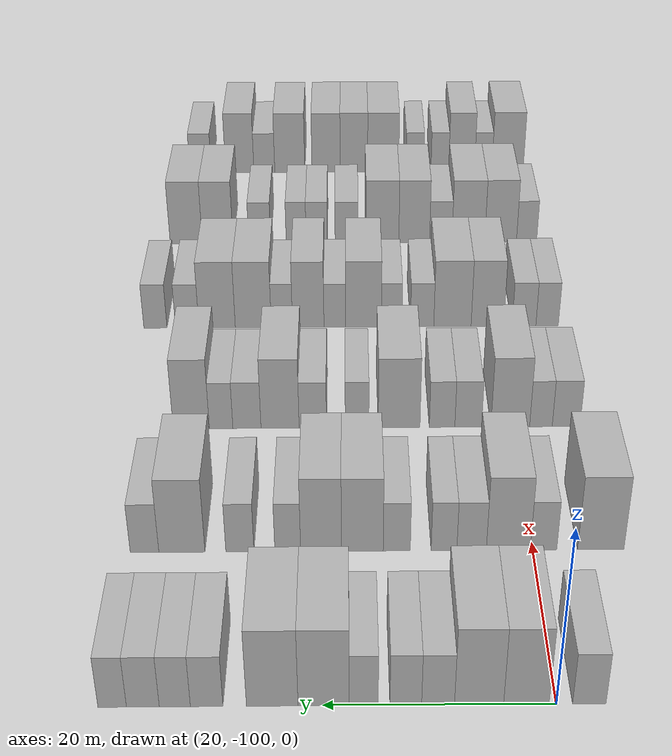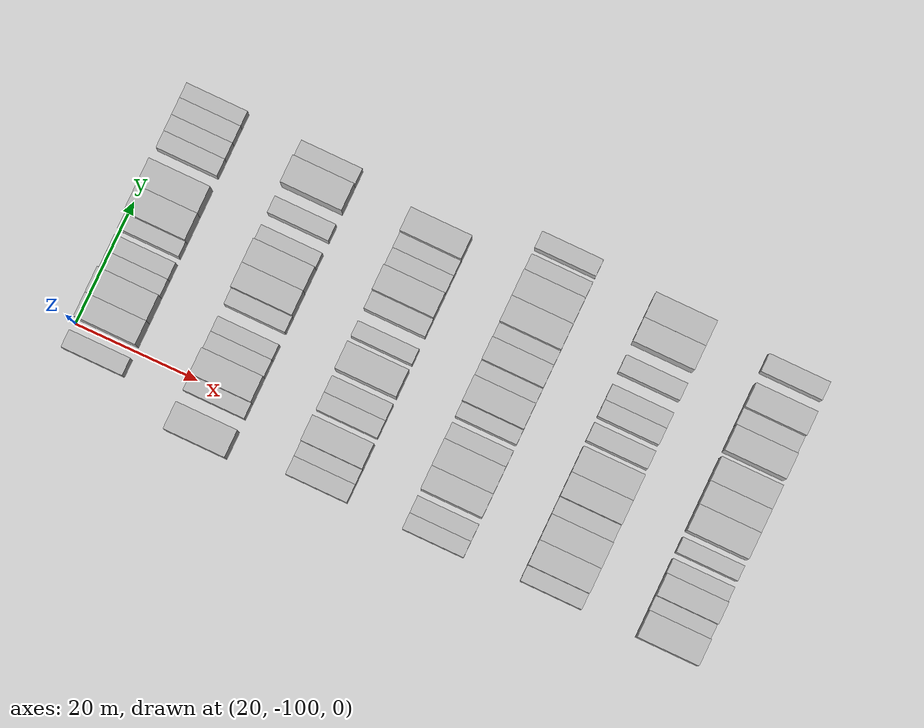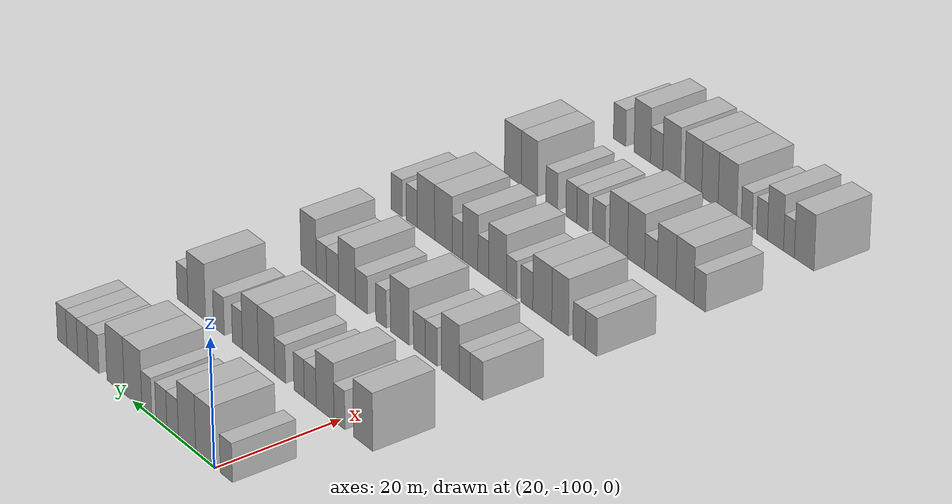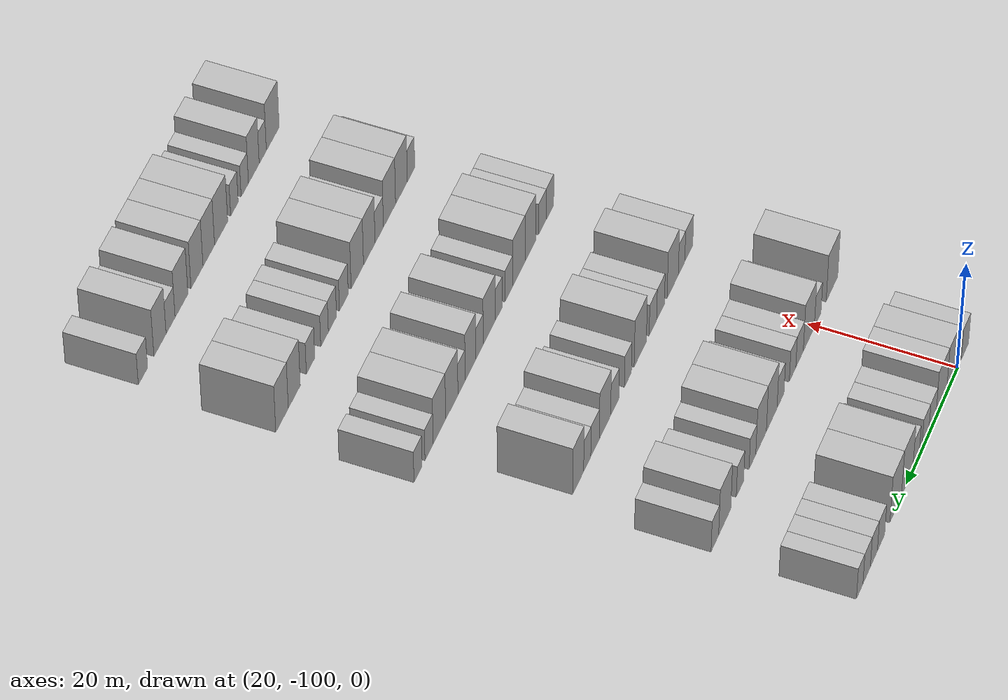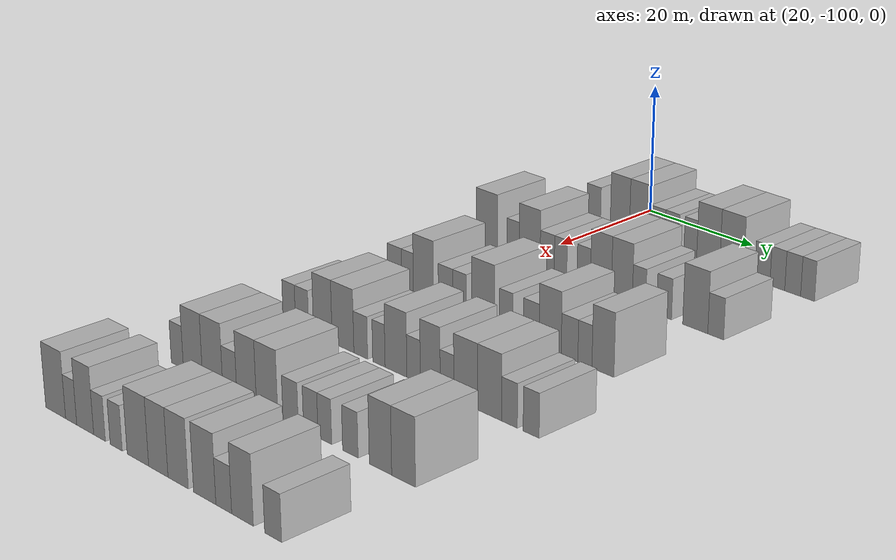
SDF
<sdf version="1.6">
 <world name="default">
  <model name="building_65">
   <static>1</static>
   <pose>25.0000 -102.7849 0 0.000000 0.000000 0.000000</pose>
   <link name="link">
    <pose>0 0 3.00 0 0 0</pose>
    <collision name="collision"><geometry><box><size>10.0000 2.8610 6.0000</size></box></geometry></collision>
    <visual name="visual">
     <cast_shadows>0</cast_shadows>
     <geometry><box><size>10.0000 2.8610 6.0000</size></box></geometry>
     <material>
      <script>
       <uri>model://HANNAS_wall/materials/scripts</uri>
       <uri>model://HANNAS_wall/materials/textures</uri>
       <name>vrc/HANNAS_wall</name>
      </script>
     </material>
    </visual>
   </link>
  </model>
  <model name="building_66">
   <static>1</static>
   <pose>25.0000 -97.4090 0 0.000000 0.000000 0.000000</pose>
   <link name="link">
    <pose>0 0 4.50 0 0 0</pose>
    <collision name="collision"><geometry><box><size>10.0000 3.8909 9.0000</size></box></geometry></collision>
    <visual name="visual">
     <cast_shadows>0</cast_shadows>
     <geometry><box><size>10.0000 3.8909 9.0000</size></box></geometry>
     <material>
      <script>
       <uri>model://HANNAS_wall/materials/scripts</uri>
       <uri>model://HANNAS_wall/materials/textures</uri>
       <name>vrc/HANNAS_wall</name>
      </script>
     </material>
    </visual>
   </link>
  </model>
  <model name="building_67">
   <static>1</static>
   <pose>25.0000 -93.3676 0 0.000000 0.000000 0.000000</pose>
   <link name="link">
    <pose>0 0 4.50 0 0 0</pose>
    <collision name="collision"><geometry><box><size>10.0000 4.1919 9.0000</size></box></geometry></collision>
    <visual name="visual">
     <cast_shadows>0</cast_shadows>
     <geometry><box><size>10.0000 4.1919 9.0000</size></box></geometry>
     <material>
      <script>
       <uri>model://HANNAS_wall/materials/scripts</uri>
       <uri>model://HANNAS_wall/materials/textures</uri>
       <name>vrc/HANNAS_wall</name>
      </script>
     </material>
    </visual>
   </link>
  </model>
  <model name="building_68">
   <static>1</static>
   <pose>25.0000 -89.8693 0 0.000000 0.000000 0.000000</pose>
   <link name="link">
    <pose>0 0 3.00 0 0 0</pose>
    <collision name="collision"><geometry><box><size>10.0000 2.8045 6.0000</size></box></geometry></collision>
    <visual name="visual">
     <cast_shadows>0</cast_shadows>
     <geometry><box><size>10.0000 2.8045 6.0000</size></box></geometry>
     <material>
      <script>
       <uri>model://HANNAS_wall/materials/scripts</uri>
       <uri>model://HANNAS_wall/materials/textures</uri>
       <name>vrc/HANNAS_wall</name>
      </script>
     </material>
    </visual>
   </link>
  </model>
  <model name="building_69">
   <static>1</static>
   <pose>25.0000 -87.1155 0 0.000000 0.000000 0.000000</pose>
   <link name="link">
    <pose>0 0 3.00 0 0 0</pose>
    <collision name="collision"><geometry><box><size>10.0000 2.7032 6.0000</size></box></geometry></collision>
    <visual name="visual">
     <cast_shadows>0</cast_shadows>
     <geometry><box><size>10.0000 2.7032 6.0000</size></box></geometry>
     <material>
      <script>
       <uri>model://HANNAS_wall/materials/scripts</uri>
       <uri>model://HANNAS_wall/materials/textures</uri>
       <name>vrc/HANNAS_wall</name>
      </script>
     </material>
    </visual>
   </link>
  </model>
  <model name="building_70">
   <static>1</static>
   <pose>25.0000 -83.5332 0 0.000000 0.000000 0.000000</pose>
   <link name="link">
    <pose>0 0 3.00 0 0 0</pose>
    <collision name="collision"><geometry><box><size>10.0000 2.4614 6.0000</size></box></geometry></collision>
    <visual name="visual">
     <cast_shadows>0</cast_shadows>
     <geometry><box><size>10.0000 2.4614 6.0000</size></box></geometry>
     <material>
      <script>
       <uri>model://HANNAS_wall/materials/scripts</uri>
       <uri>model://HANNAS_wall/materials/textures</uri>
       <name>vrc/HANNAS_wall</name>
      </script>
     </material>
    </visual>
   </link>
  </model>
  <model name="building_71">
   <static>1</static>
   <pose>25.0000 -80.1200 0 0.000000 0.000000 0.000000</pose>
   <link name="link">
    <pose>0 0 4.50 0 0 0</pose>
    <collision name="collision"><geometry><box><size>10.0000 4.3650 9.0000</size></box></geometry></collision>
    <visual name="visual">
     <cast_shadows>0</cast_shadows>
     <geometry><box><size>10.0000 4.3650 9.0000</size></box></geometry>
     <material>
      <script>
       <uri>model://HANNAS_wall/materials/scripts</uri>
       <uri>model://HANNAS_wall/materials/textures</uri>
       <name>vrc/HANNAS_wall</name>
      </script>
     </material>
    </visual>
   </link>
  </model>
  <model name="building_72">
   <static>1</static>
   <pose>25.0000 -75.7401 0 0.000000 0.000000 0.000000</pose>
   <link name="link">
    <pose>0 0 4.50 0 0 0</pose>
    <collision name="collision"><geometry><box><size>10.0000 4.3948 9.0000</size></box></geometry></collision>
    <visual name="visual">
     <cast_shadows>0</cast_shadows>
     <geometry><box><size>10.0000 4.3948 9.0000</size></box></geometry>
     <material>
      <script>
       <uri>model://HANNAS_wall/materials/scripts</uri>
       <uri>model://HANNAS_wall/materials/textures</uri>
       <name>vrc/HANNAS_wall</name>
      </script>
     </material>
    </visual>
   </link>
  </model>
  <model name="building_73">
   <static>1</static>
   <pose>25.0000 -70.1565 0 0.000000 0.000000 0.000000</pose>
   <link name="link">
    <pose>0 0 3.00 0 0 0</pose>
    <collision name="collision"><geometry><box><size>10.0000 2.7724 6.0000</size></box></geometry></collision>
    <visual name="visual">
     <cast_shadows>0</cast_shadows>
     <geometry><box><size>10.0000 2.7724 6.0000</size></box></geometry>
     <material>
      <script>
       <uri>model://HANNAS_wall/materials/scripts</uri>
       <uri>model://HANNAS_wall/materials/textures</uri>
       <name>vrc/HANNAS_wall</name>
      </script>
     </material>
    </visual>
   </link>
  </model>
  <model name="building_74">
   <static>1</static>
   <pose>25.0000 -67.4479 0 0.000000 0.000000 0.000000</pose>
   <link name="link">
    <pose>0 0 3.00 0 0 0</pose>
    <collision name="collision"><geometry><box><size>10.0000 2.6448 6.0000</size></box></geometry></collision>
    <visual name="visual">
     <cast_shadows>0</cast_shadows>
     <geometry><box><size>10.0000 2.6448 6.0000</size></box></geometry>
     <material>
      <script>
       <uri>model://HANNAS_wall/materials/scripts</uri>
       <uri>model://HANNAS_wall/materials/textures</uri>
       <name>vrc/HANNAS_wall</name>
      </script>
     </material>
    </visual>
   </link>
  </model>
  <model name="building_75">
   <static>1</static>
   <pose>25.0000 -64.7291 0 0.000000 0.000000 0.000000</pose>
   <link name="link">
    <pose>0 0 3.00 0 0 0</pose>
    <collision name="collision"><geometry><box><size>10.0000 2.7929 6.0000</size></box></geometry></collision>
    <visual name="visual">
     <cast_shadows>0</cast_shadows>
     <geometry><box><size>10.0000 2.7929 6.0000</size></box></geometry>
     <material>
      <script>
       <uri>model://HANNAS_wall/materials/scripts</uri>
       <uri>model://HANNAS_wall/materials/textures</uri>
       <name>vrc/HANNAS_wall</name>
      </script>
     </material>
    </visual>
   </link>
  </model>
  <model name="building_76">
   <static>1</static>
   <pose>25.0000 -62.1203 0 0.000000 0.000000 0.000000</pose>
   <link name="link">
    <pose>0 0 3.00 0 0 0</pose>
    <collision name="collision"><geometry><box><size>10.0000 2.4247 6.0000</size></box></geometry></collision>
    <visual name="visual">
     <cast_shadows>0</cast_shadows>
     <geometry><box><size>10.0000 2.4247 6.0000</size></box></geometry>
     <material>
      <script>
       <uri>model://HANNAS_wall/materials/scripts</uri>
       <uri>model://HANNAS_wall/materials/textures</uri>
       <name>vrc/HANNAS_wall</name>
      </script>
     </material>
    </visual>
   </link>
  </model>
  <model name="building_229">
   <static>1</static>
   <pose>44.0000 -106.5244 0 0.000000 0.000000 0.000000</pose>
   <link name="link">
    <pose>0 0 4.50 0 0 0</pose>
    <collision name="collision"><geometry><box><size>10.0000 4.4620 9.0000</size></box></geometry></collision>
    <visual name="visual">
     <cast_shadows>0</cast_shadows>
     <geometry><box><size>10.0000 4.4620 9.0000</size></box></geometry>
     <material>
      <script>
       <uri>model://HANNAS_wall/materials/scripts</uri>
       <uri>model://HANNAS_wall/materials/textures</uri>
       <name>vrc/HANNAS_wall</name>
      </script>
     </material>
    </visual>
   </link>
  </model>
  <model name="building_230">
   <static>1</static>
   <pose>44.0000 -101.0189 0 0.000000 0.000000 0.000000</pose>
   <link name="link">
    <pose>0 0 3.00 0 0 0</pose>
    <collision name="collision"><geometry><box><size>10.0000 2.5490 6.0000</size></box></geometry></collision>
    <visual name="visual">
     <cast_shadows>0</cast_shadows>
     <geometry><box><size>10.0000 2.5490 6.0000</size></box></geometry>
     <material>
      <script>
       <uri>model://HANNAS_wall/materials/scripts</uri>
       <uri>model://HANNAS_wall/materials/textures</uri>
       <name>vrc/HANNAS_wall</name>
      </script>
     </material>
    </visual>
   </link>
  </model>
  <model name="building_231">
   <static>1</static>
   <pose>44.0000 -97.6346 0 0.000000 0.000000 0.000000</pose>
   <link name="link">
    <pose>0 0 4.50 0 0 0</pose>
    <collision name="collision"><geometry><box><size>10.0000 4.2196 9.0000</size></box></geometry></collision>
    <visual name="visual">
     <cast_shadows>0</cast_shadows>
     <geometry><box><size>10.0000 4.2196 9.0000</size></box></geometry>
     <material>
      <script>
       <uri>model://HANNAS_wall/materials/scripts</uri>
       <uri>model://HANNAS_wall/materials/textures</uri>
       <name>vrc/HANNAS_wall</name>
      </script>
     </material>
    </visual>
   </link>
  </model>
  <model name="building_232">
   <static>1</static>
   <pose>44.0000 -94.1074 0 0.000000 0.000000 0.000000</pose>
   <link name="link">
    <pose>0 0 3.00 0 0 0</pose>
    <collision name="collision"><geometry><box><size>10.0000 2.8350 6.0000</size></box></geometry></collision>
    <visual name="visual">
     <cast_shadows>0</cast_shadows>
     <geometry><box><size>10.0000 2.8350 6.0000</size></box></geometry>
     <material>
      <script>
       <uri>model://HANNAS_wall/materials/scripts</uri>
       <uri>model://HANNAS_wall/materials/textures</uri>
       <name>vrc/HANNAS_wall</name>
      </script>
     </material>
    </visual>
   </link>
  </model>
  <model name="building_233">
   <static>1</static>
   <pose>44.0000 -91.4559 0 0.000000 0.000000 0.000000</pose>
   <link name="link">
    <pose>0 0 3.00 0 0 0</pose>
    <collision name="collision"><geometry><box><size>10.0000 2.4679 6.0000</size></box></geometry></collision>
    <visual name="visual">
     <cast_shadows>0</cast_shadows>
     <geometry><box><size>10.0000 2.4679 6.0000</size></box></geometry>
     <material>
      <script>
       <uri>model://HANNAS_wall/materials/scripts</uri>
       <uri>model://HANNAS_wall/materials/textures</uri>
       <name>vrc/HANNAS_wall</name>
      </script>
     </material>
    </visual>
   </link>
  </model>
  <model name="building_234">
   <static>1</static>
   <pose>44.0000 -86.9217 0 0.000000 0.000000 0.000000</pose>
   <link name="link">
    <pose>0 0 3.00 0 0 0</pose>
    <collision name="collision"><geometry><box><size>10.0000 2.6005 6.0000</size></box></geometry></collision>
    <visual name="visual">
     <cast_shadows>0</cast_shadows>
     <geometry><box><size>10.0000 2.6005 6.0000</size></box></geometry>
     <material>
      <script>
       <uri>model://HANNAS_wall/materials/scripts</uri>
       <uri>model://HANNAS_wall/materials/textures</uri>
       <name>vrc/HANNAS_wall</name>
      </script>
     </material>
    </visual>
   </link>
  </model>
  <model name="building_235">
   <static>1</static>
   <pose>44.0000 -83.6260 0 0.000000 0.000000 0.000000</pose>
   <link name="link">
    <pose>0 0 4.50 0 0 0</pose>
    <collision name="collision"><geometry><box><size>10.0000 3.9909 9.0000</size></box></geometry></collision>
    <visual name="visual">
     <cast_shadows>0</cast_shadows>
     <geometry><box><size>10.0000 3.9909 9.0000</size></box></geometry>
     <material>
      <script>
       <uri>model://HANNAS_wall/materials/scripts</uri>
       <uri>model://HANNAS_wall/materials/textures</uri>
       <name>vrc/HANNAS_wall</name>
      </script>
     </material>
    </visual>
   </link>
  </model>
  <model name="building_236">
   <static>1</static>
   <pose>44.0000 -79.6672 0 0.000000 0.000000 0.000000</pose>
   <link name="link">
    <pose>0 0 4.50 0 0 0</pose>
    <collision name="collision"><geometry><box><size>10.0000 3.9267 9.0000</size></box></geometry></collision>
    <visual name="visual">
     <cast_shadows>0</cast_shadows>
     <geometry><box><size>10.0000 3.9267 9.0000</size></box></geometry>
     <material>
      <script>
       <uri>model://HANNAS_wall/materials/scripts</uri>
       <uri>model://HANNAS_wall/materials/textures</uri>
       <name>vrc/HANNAS_wall</name>
      </script>
     </material>
    </visual>
   </link>
  </model>
  <model name="building_237">
   <static>1</static>
   <pose>44.0000 -76.4677 0 0.000000 0.000000 0.000000</pose>
   <link name="link">
    <pose>0 0 3.00 0 0 0</pose>
    <collision name="collision"><geometry><box><size>10.0000 2.4722 6.0000</size></box></geometry></collision>
    <visual name="visual">
     <cast_shadows>0</cast_shadows>
     <geometry><box><size>10.0000 2.4722 6.0000</size></box></geometry>
     <material>
      <script>
       <uri>model://HANNAS_wall/materials/scripts</uri>
       <uri>model://HANNAS_wall/materials/textures</uri>
       <name>vrc/HANNAS_wall</name>
      </script>
     </material>
    </visual>
   </link>
  </model>
  <model name="building_238">
   <static>1</static>
   <pose>44.0000 -71.8830 0 0.000000 0.000000 0.000000</pose>
   <link name="link">
    <pose>0 0 3.00 0 0 0</pose>
    <collision name="collision"><geometry><box><size>10.0000 2.6972 6.0000</size></box></geometry></collision>
    <visual name="visual">
     <cast_shadows>0</cast_shadows>
     <geometry><box><size>10.0000 2.6972 6.0000</size></box></geometry>
     <material>
      <script>
       <uri>model://HANNAS_wall/materials/scripts</uri>
       <uri>model://HANNAS_wall/materials/textures</uri>
       <name>vrc/HANNAS_wall</name>
      </script>
     </material>
    </visual>
   </link>
  </model>
  <model name="building_239">
   <static>1</static>
   <pose>44.0000 -66.3242 0 0.000000 0.000000 0.000000</pose>
   <link name="link">
    <pose>0 0 4.50 0 0 0</pose>
    <collision name="collision"><geometry><box><size>10.0000 4.4204 9.0000</size></box></geometry></collision>
    <visual name="visual">
     <cast_shadows>0</cast_shadows>
     <geometry><box><size>10.0000 4.4204 9.0000</size></box></geometry>
     <material>
      <script>
       <uri>model://HANNAS_wall/materials/scripts</uri>
       <uri>model://HANNAS_wall/materials/textures</uri>
       <name>vrc/HANNAS_wall</name>
      </script>
     </material>
    </visual>
   </link>
  </model>
  <model name="building_240">
   <static>1</static>
   <pose>44.0000 -62.7446 0 0.000000 0.000000 0.000000</pose>
   <link name="link">
    <pose>0 0 3.00 0 0 0</pose>
    <collision name="collision"><geometry><box><size>10.0000 2.7388 6.0000</size></box></geometry></collision>
    <visual name="visual">
     <cast_shadows>0</cast_shadows>
     <geometry><box><size>10.0000 2.7388 6.0000</size></box></geometry>
     <material>
      <script>
       <uri>model://HANNAS_wall/materials/scripts</uri>
       <uri>model://HANNAS_wall/materials/textures</uri>
       <name>vrc/HANNAS_wall</name>
      </script>
     </material>
    </visual>
   </link>
  </model>
  <model name="building_405">
   <static>1</static>
   <pose>63.0000 -105.5866 0 0.000000 0.000000 0.000000</pose>
   <link name="link">
    <pose>0 0 3.00 0 0 0</pose>
    <collision name="collision"><geometry><box><size>10.0000 2.9656 6.0000</size></box></geometry></collision>
    <visual name="visual">
     <cast_shadows>0</cast_shadows>
     <geometry><box><size>10.0000 2.9656 6.0000</size></box></geometry>
     <material>
      <script>
       <uri>model://HANNAS_wall/materials/scripts</uri>
       <uri>model://HANNAS_wall/materials/textures</uri>
       <name>vrc/HANNAS_wall</name>
      </script>
     </material>
    </visual>
   </link>
  </model>
  <model name="building_406">
   <static>1</static>
   <pose>63.0000 -102.8964 0 0.000000 0.000000 0.000000</pose>
   <link name="link">
    <pose>0 0 3.00 0 0 0</pose>
    <collision name="collision"><geometry><box><size>10.0000 2.4147 6.0000</size></box></geometry></collision>
    <visual name="visual">
     <cast_shadows>0</cast_shadows>
     <geometry><box><size>10.0000 2.4147 6.0000</size></box></geometry>
     <material>
      <script>
       <uri>model://HANNAS_wall/materials/scripts</uri>
       <uri>model://HANNAS_wall/materials/textures</uri>
       <name>vrc/HANNAS_wall</name>
      </script>
     </material>
    </visual>
   </link>
  </model>
  <model name="building_407">
   <static>1</static>
   <pose>63.0000 -99.6198 0 0.000000 0.000000 0.000000</pose>
   <link name="link">
    <pose>0 0 4.50 0 0 0</pose>
    <collision name="collision"><geometry><box><size>10.0000 4.1385 9.0000</size></box></geometry></collision>
    <visual name="visual">
     <cast_shadows>0</cast_shadows>
     <geometry><box><size>10.0000 4.1385 9.0000</size></box></geometry>
     <material>
      <script>
       <uri>model://HANNAS_wall/materials/scripts</uri>
       <uri>model://HANNAS_wall/materials/textures</uri>
       <name>vrc/HANNAS_wall</name>
      </script>
     </material>
    </visual>
   </link>
  </model>
  <model name="building_408">
   <static>1</static>
   <pose>63.0000 -95.1232 0 0.000000 0.000000 0.000000</pose>
   <link name="link">
    <pose>0 0 3.00 0 0 0</pose>
    <collision name="collision"><geometry><box><size>10.0000 2.8548 6.0000</size></box></geometry></collision>
    <visual name="visual">
     <cast_shadows>0</cast_shadows>
     <geometry><box><size>10.0000 2.8548 6.0000</size></box></geometry>
     <material>
      <script>
       <uri>model://HANNAS_wall/materials/scripts</uri>
       <uri>model://HANNAS_wall/materials/textures</uri>
       <name>vrc/HANNAS_wall</name>
      </script>
     </material>
    </visual>
   </link>
  </model>
  <model name="building_409">
   <static>1</static>
   <pose>63.0000 -92.3336 0 0.000000 0.000000 0.000000</pose>
   <link name="link">
    <pose>0 0 3.00 0 0 0</pose>
    <collision name="collision"><geometry><box><size>10.0000 2.7244 6.0000</size></box></geometry></collision>
    <visual name="visual">
     <cast_shadows>0</cast_shadows>
     <geometry><box><size>10.0000 2.7244 6.0000</size></box></geometry>
     <material>
      <script>
       <uri>model://HANNAS_wall/materials/scripts</uri>
       <uri>model://HANNAS_wall/materials/textures</uri>
       <name>vrc/HANNAS_wall</name>
      </script>
     </material>
    </visual>
   </link>
  </model>
  <model name="building_410">
   <static>1</static>
   <pose>63.0000 -87.7467 0 0.000000 0.000000 0.000000</pose>
   <link name="link">
    <pose>0 0 4.50 0 0 0</pose>
    <collision name="collision"><geometry><box><size>10.0000 4.4492 9.0000</size></box></geometry></collision>
    <visual name="visual">
     <cast_shadows>0</cast_shadows>
     <geometry><box><size>10.0000 4.4492 9.0000</size></box></geometry>
     <material>
      <script>
       <uri>model://HANNAS_wall/materials/scripts</uri>
       <uri>model://HANNAS_wall/materials/textures</uri>
       <name>vrc/HANNAS_wall</name>
      </script>
     </material>
    </visual>
   </link>
  </model>
  <model name="building_411">
   <static>1</static>
   <pose>63.0000 -83.2671 0 0.000000 0.000000 0.000000</pose>
   <link name="link">
    <pose>0 0 3.00 0 0 0</pose>
    <collision name="collision"><geometry><box><size>10.0000 2.5100 6.0000</size></box></geometry></collision>
    <visual name="visual">
     <cast_shadows>0</cast_shadows>
     <geometry><box><size>10.0000 2.5100 6.0000</size></box></geometry>
     <material>
      <script>
       <uri>model://HANNAS_wall/materials/scripts</uri>
       <uri>model://HANNAS_wall/materials/textures</uri>
       <name>vrc/HANNAS_wall</name>
      </script>
     </material>
    </visual>
   </link>
  </model>
  <model name="building_412">
   <static>1</static>
   <pose>63.0000 -78.5492 0 0.000000 0.000000 0.000000</pose>
   <link name="link">
    <pose>0 0 3.00 0 0 0</pose>
    <collision name="collision"><geometry><box><size>10.0000 2.9260 6.0000</size></box></geometry></collision>
    <visual name="visual">
     <cast_shadows>0</cast_shadows>
     <geometry><box><size>10.0000 2.9260 6.0000</size></box></geometry>
     <material>
      <script>
       <uri>model://HANNAS_wall/materials/scripts</uri>
       <uri>model://HANNAS_wall/materials/textures</uri>
       <name>vrc/HANNAS_wall</name>
      </script>
     </material>
    </visual>
   </link>
  </model>
  <model name="building_413">
   <static>1</static>
   <pose>63.0000 -75.0539 0 0.000000 0.000000 0.000000</pose>
   <link name="link">
    <pose>0 0 4.50 0 0 0</pose>
    <collision name="collision"><geometry><box><size>10.0000 4.0645 9.0000</size></box></geometry></collision>
    <visual name="visual">
     <cast_shadows>0</cast_shadows>
     <geometry><box><size>10.0000 4.0645 9.0000</size></box></geometry>
     <material>
      <script>
       <uri>model://HANNAS_wall/materials/scripts</uri>
       <uri>model://HANNAS_wall/materials/textures</uri>
       <name>vrc/HANNAS_wall</name>
      </script>
     </material>
    </visual>
   </link>
  </model>
  <model name="building_414">
   <static>1</static>
   <pose>63.0000 -71.5226 0 0.000000 0.000000 0.000000</pose>
   <link name="link">
    <pose>0 0 3.00 0 0 0</pose>
    <collision name="collision"><geometry><box><size>10.0000 2.9981 6.0000</size></box></geometry></collision>
    <visual name="visual">
     <cast_shadows>0</cast_shadows>
     <geometry><box><size>10.0000 2.9981 6.0000</size></box></geometry>
     <material>
      <script>
       <uri>model://HANNAS_wall/materials/scripts</uri>
       <uri>model://HANNAS_wall/materials/textures</uri>
       <name>vrc/HANNAS_wall</name>
      </script>
     </material>
    </visual>
   </link>
  </model>
  <model name="building_415">
   <static>1</static>
   <pose>63.0000 -68.7735 0 0.000000 0.000000 0.000000</pose>
   <link name="link">
    <pose>0 0 3.00 0 0 0</pose>
    <collision name="collision"><geometry><box><size>10.0000 2.5002 6.0000</size></box></geometry></collision>
    <visual name="visual">
     <cast_shadows>0</cast_shadows>
     <geometry><box><size>10.0000 2.5002 6.0000</size></box></geometry>
     <material>
      <script>
       <uri>model://HANNAS_wall/materials/scripts</uri>
       <uri>model://HANNAS_wall/materials/textures</uri>
       <name>vrc/HANNAS_wall</name>
      </script>
     </material>
    </visual>
   </link>
  </model>
  <model name="building_416">
   <static>1</static>
   <pose>63.0000 -65.5989 0 0.000000 0.000000 0.000000</pose>
   <link name="link">
    <pose>0 0 4.50 0 0 0</pose>
    <collision name="collision"><geometry><box><size>10.0000 3.8489 9.0000</size></box></geometry></collision>
    <visual name="visual">
     <cast_shadows>0</cast_shadows>
     <geometry><box><size>10.0000 3.8489 9.0000</size></box></geometry>
     <material>
      <script>
       <uri>model://HANNAS_wall/materials/scripts</uri>
       <uri>model://HANNAS_wall/materials/textures</uri>
       <name>vrc/HANNAS_wall</name>
      </script>
     </material>
    </visual>
   </link>
  </model>
  <model name="building_580">
   <static>1</static>
   <pose>82.0000 -105.7443 0 0.000000 0.000000 0.000000</pose>
   <link name="link">
    <pose>0 0 3.00 0 0 0</pose>
    <collision name="collision"><geometry><box><size>10.0000 2.6399 6.0000</size></box></geometry></collision>
    <visual name="visual">
     <cast_shadows>0</cast_shadows>
     <geometry><box><size>10.0000 2.6399 6.0000</size></box></geometry>
     <material>
      <script>
       <uri>model://HANNAS_wall/materials/scripts</uri>
       <uri>model://HANNAS_wall/materials/textures</uri>
       <name>vrc/HANNAS_wall</name>
      </script>
     </material>
    </visual>
   </link>
  </model>
  <model name="building_581">
   <static>1</static>
   <pose>82.0000 -103.0315 0 0.000000 0.000000 0.000000</pose>
   <link name="link">
    <pose>0 0 3.00 0 0 0</pose>
    <collision name="collision"><geometry><box><size>10.0000 2.7857 6.0000</size></box></geometry></collision>
    <visual name="visual">
     <cast_shadows>0</cast_shadows>
     <geometry><box><size>10.0000 2.7857 6.0000</size></box></geometry>
     <material>
      <script>
       <uri>model://HANNAS_wall/materials/scripts</uri>
       <uri>model://HANNAS_wall/materials/textures</uri>
       <name>vrc/HANNAS_wall</name>
      </script>
     </material>
    </visual>
   </link>
  </model>
  <model name="building_582">
   <static>1</static>
   <pose>82.0000 -98.7223 0 0.000000 0.000000 0.000000</pose>
   <link name="link">
    <pose>0 0 4.50 0 0 0</pose>
    <collision name="collision"><geometry><box><size>10.0000 3.8327 9.0000</size></box></geometry></collision>
    <visual name="visual">
     <cast_shadows>0</cast_shadows>
     <geometry><box><size>10.0000 3.8327 9.0000</size></box></geometry>
     <material>
      <script>
       <uri>model://HANNAS_wall/materials/scripts</uri>
       <uri>model://HANNAS_wall/materials/textures</uri>
       <name>vrc/HANNAS_wall</name>
      </script>
     </material>
    </visual>
   </link>
  </model>
  <model name="building_583">
   <static>1</static>
   <pose>82.0000 -94.6121 0 0.000000 0.000000 0.000000</pose>
   <link name="link">
    <pose>0 0 4.50 0 0 0</pose>
    <collision name="collision"><geometry><box><size>10.0000 4.3877 9.0000</size></box></geometry></collision>
    <visual name="visual">
     <cast_shadows>0</cast_shadows>
     <geometry><box><size>10.0000 4.3877 9.0000</size></box></geometry>
     <material>
      <script>
       <uri>model://HANNAS_wall/materials/scripts</uri>
       <uri>model://HANNAS_wall/materials/textures</uri>
       <name>vrc/HANNAS_wall</name>
      </script>
     </material>
    </visual>
   </link>
  </model>
  <model name="building_584">
   <static>1</static>
   <pose>82.0000 -91.0523 0 0.000000 0.000000 0.000000</pose>
   <link name="link">
    <pose>0 0 3.00 0 0 0</pose>
    <collision name="collision"><geometry><box><size>10.0000 2.7319 6.0000</size></box></geometry></collision>
    <visual name="visual">
     <cast_shadows>0</cast_shadows>
     <geometry><box><size>10.0000 2.7319 6.0000</size></box></geometry>
     <material>
      <script>
       <uri>model://HANNAS_wall/materials/scripts</uri>
       <uri>model://HANNAS_wall/materials/textures</uri>
       <name>vrc/HANNAS_wall</name>
      </script>
     </material>
    </visual>
   </link>
  </model>
  <model name="building_585">
   <static>1</static>
   <pose>82.0000 -87.4783 0 0.000000 0.000000 0.000000</pose>
   <link name="link">
    <pose>0 0 3.00 0 0 0</pose>
    <collision name="collision"><geometry><box><size>10.0000 2.4161 6.0000</size></box></geometry></collision>
    <visual name="visual">
     <cast_shadows>0</cast_shadows>
     <geometry><box><size>10.0000 2.4161 6.0000</size></box></geometry>
     <material>
      <script>
       <uri>model://HANNAS_wall/materials/scripts</uri>
       <uri>model://HANNAS_wall/materials/textures</uri>
       <name>vrc/HANNAS_wall</name>
      </script>
     </material>
    </visual>
   </link>
  </model>
  <model name="building_586">
   <static>1</static>
   <pose>82.0000 -84.1757 0 0.000000 0.000000 0.000000</pose>
   <link name="link">
    <pose>0 0 4.50 0 0 0</pose>
    <collision name="collision"><geometry><box><size>10.0000 4.1892 9.0000</size></box></geometry></collision>
    <visual name="visual">
     <cast_shadows>0</cast_shadows>
     <geometry><box><size>10.0000 4.1892 9.0000</size></box></geometry>
     <material>
      <script>
       <uri>model://HANNAS_wall/materials/scripts</uri>
       <uri>model://HANNAS_wall/materials/textures</uri>
       <name>vrc/HANNAS_wall</name>
      </script>
     </material>
    </visual>
   </link>
  </model>
  <model name="building_587">
   <static>1</static>
   <pose>82.0000 -80.8067 0 0.000000 0.000000 0.000000</pose>
   <link name="link">
    <pose>0 0 3.00 0 0 0</pose>
    <collision name="collision"><geometry><box><size>10.0000 2.5488 6.0000</size></box></geometry></collision>
    <visual name="visual">
     <cast_shadows>0</cast_shadows>
     <geometry><box><size>10.0000 2.5488 6.0000</size></box></geometry>
     <material>
      <script>
       <uri>model://HANNAS_wall/materials/scripts</uri>
       <uri>model://HANNAS_wall/materials/textures</uri>
       <name>vrc/HANNAS_wall</name>
      </script>
     </material>
    </visual>
   </link>
  </model>
  <model name="building_588">
   <static>1</static>
   <pose>82.0000 -77.6833 0 0.000000 0.000000 0.000000</pose>
   <link name="link">
    <pose>0 0 4.50 0 0 0</pose>
    <collision name="collision"><geometry><box><size>10.0000 3.6979 9.0000</size></box></geometry></collision>
    <visual name="visual">
     <cast_shadows>0</cast_shadows>
     <geometry><box><size>10.0000 3.6979 9.0000</size></box></geometry>
     <material>
      <script>
       <uri>model://HANNAS_wall/materials/scripts</uri>
       <uri>model://HANNAS_wall/materials/textures</uri>
       <name>vrc/HANNAS_wall</name>
      </script>
     </material>
    </visual>
   </link>
  </model>
  <model name="building_589">
   <static>1</static>
   <pose>82.0000 -74.5910 0 0.000000 0.000000 0.000000</pose>
   <link name="link">
    <pose>0 0 3.00 0 0 0</pose>
    <collision name="collision"><geometry><box><size>10.0000 2.4867 6.0000</size></box></geometry></collision>
    <visual name="visual">
     <cast_shadows>0</cast_shadows>
     <geometry><box><size>10.0000 2.4867 6.0000</size></box></geometry>
     <material>
      <script>
       <uri>model://HANNAS_wall/materials/scripts</uri>
       <uri>model://HANNAS_wall/materials/textures</uri>
       <name>vrc/HANNAS_wall</name>
      </script>
     </material>
    </visual>
   </link>
  </model>
  <model name="building_590">
   <static>1</static>
   <pose>82.0000 -71.2392 0 0.000000 0.000000 0.000000</pose>
   <link name="link">
    <pose>0 0 4.50 0 0 0</pose>
    <collision name="collision"><geometry><box><size>10.0000 4.2168 9.0000</size></box></geometry></collision>
    <visual name="visual">
     <cast_shadows>0</cast_shadows>
     <geometry><box><size>10.0000 4.2168 9.0000</size></box></geometry>
     <material>
      <script>
       <uri>model://HANNAS_wall/materials/scripts</uri>
       <uri>model://HANNAS_wall/materials/textures</uri>
       <name>vrc/HANNAS_wall</name>
      </script>
     </material>
    </visual>
   </link>
  </model>
  <model name="building_591">
   <static>1</static>
   <pose>82.0000 -66.9979 0 0.000000 0.000000 0.000000</pose>
   <link name="link">
    <pose>0 0 4.50 0 0 0</pose>
    <collision name="collision"><geometry><box><size>10.0000 4.2659 9.0000</size></box></geometry></collision>
    <visual name="visual">
     <cast_shadows>0</cast_shadows>
     <geometry><box><size>10.0000 4.2659 9.0000</size></box></geometry>
     <material>
      <script>
       <uri>model://HANNAS_wall/materials/scripts</uri>
       <uri>model://HANNAS_wall/materials/textures</uri>
       <name>vrc/HANNAS_wall</name>
      </script>
     </material>
    </visual>
   </link>
  </model>
  <model name="building_592">
   <static>1</static>
   <pose>82.0000 -63.4952 0 0.000000 0.000000 0.000000</pose>
   <link name="link">
    <pose>0 0 3.00 0 0 0</pose>
    <collision name="collision"><geometry><box><size>10.0000 2.7394 6.0000</size></box></geometry></collision>
    <visual name="visual">
     <cast_shadows>0</cast_shadows>
     <geometry><box><size>10.0000 2.7394 6.0000</size></box></geometry>
     <material>
      <script>
       <uri>model://HANNAS_wall/materials/scripts</uri>
       <uri>model://HANNAS_wall/materials/textures</uri>
       <name>vrc/HANNAS_wall</name>
      </script>
     </material>
    </visual>
   </link>
  </model>
  <model name="building_593">
   <static>1</static>
   <pose>82.0000 -59.7701 0 0.000000 0.000000 0.000000</pose>
   <link name="link">
    <pose>0 0 3.00 0 0 0</pose>
    <collision name="collision"><geometry><box><size>10.0000 2.7108 6.0000</size></box></geometry></collision>
    <visual name="visual">
     <cast_shadows>0</cast_shadows>
     <geometry><box><size>10.0000 2.7108 6.0000</size></box></geometry>
     <material>
      <script>
       <uri>model://HANNAS_wall/materials/scripts</uri>
       <uri>model://HANNAS_wall/materials/textures</uri>
       <name>vrc/HANNAS_wall</name>
      </script>
     </material>
    </visual>
   </link>
  </model>
  <model name="building_751">
   <static>1</static>
   <pose>101.0000 -105.2931 0 0.000000 0.000000 0.000000</pose>
   <link name="link">
    <pose>0 0 3.00 0 0 0</pose>
    <collision name="collision"><geometry><box><size>10.0000 2.5887 6.0000</size></box></geometry></collision>
    <visual name="visual">
     <cast_shadows>0</cast_shadows>
     <geometry><box><size>10.0000 2.5887 6.0000</size></box></geometry>
     <material>
      <script>
       <uri>model://HANNAS_wall/materials/scripts</uri>
       <uri>model://HANNAS_wall/materials/textures</uri>
       <name>vrc/HANNAS_wall</name>
      </script>
     </material>
    </visual>
   </link>
  </model>
  <model name="building_752">
   <static>1</static>
   <pose>101.0000 -101.9649 0 0.000000 0.000000 0.000000</pose>
   <link name="link">
    <pose>0 0 4.50 0 0 0</pose>
    <collision name="collision"><geometry><box><size>10.0000 4.0677 9.0000</size></box></geometry></collision>
    <visual name="visual">
     <cast_shadows>0</cast_shadows>
     <geometry><box><size>10.0000 4.0677 9.0000</size></box></geometry>
     <material>
      <script>
       <uri>model://HANNAS_wall/materials/scripts</uri>
       <uri>model://HANNAS_wall/materials/textures</uri>
       <name>vrc/HANNAS_wall</name>
      </script>
     </material>
    </visual>
   </link>
  </model>
  <model name="building_753">
   <static>1</static>
   <pose>101.0000 -97.8280 0 0.000000 0.000000 0.000000</pose>
   <link name="link">
    <pose>0 0 4.50 0 0 0</pose>
    <collision name="collision"><geometry><box><size>10.0000 4.2060 9.0000</size></box></geometry></collision>
    <visual name="visual">
     <cast_shadows>0</cast_shadows>
     <geometry><box><size>10.0000 4.2060 9.0000</size></box></geometry>
     <material>
      <script>
       <uri>model://HANNAS_wall/materials/scripts</uri>
       <uri>model://HANNAS_wall/materials/textures</uri>
       <name>vrc/HANNAS_wall</name>
      </script>
     </material>
    </visual>
   </link>
  </model>
  <model name="building_754">
   <static>1</static>
   <pose>101.0000 -94.2871 0 0.000000 0.000000 0.000000</pose>
   <link name="link">
    <pose>0 0 3.00 0 0 0</pose>
    <collision name="collision"><geometry><box><size>10.0000 2.8759 6.0000</size></box></geometry></collision>
    <visual name="visual">
     <cast_shadows>0</cast_shadows>
     <geometry><box><size>10.0000 2.8759 6.0000</size></box></geometry>
     <material>
      <script>
       <uri>model://HANNAS_wall/materials/scripts</uri>
       <uri>model://HANNAS_wall/materials/textures</uri>
       <name>vrc/HANNAS_wall</name>
      </script>
     </material>
    </visual>
   </link>
  </model>
  <model name="building_755">
   <static>1</static>
   <pose>101.0000 -90.8794 0 0.000000 0.000000 0.000000</pose>
   <link name="link">
    <pose>0 0 4.50 0 0 0</pose>
    <collision name="collision"><geometry><box><size>10.0000 3.9394 9.0000</size></box></geometry></collision>
    <visual name="visual">
     <cast_shadows>0</cast_shadows>
     <geometry><box><size>10.0000 3.9394 9.0000</size></box></geometry>
     <material>
      <script>
       <uri>model://HANNAS_wall/materials/scripts</uri>
       <uri>model://HANNAS_wall/materials/textures</uri>
       <name>vrc/HANNAS_wall</name>
      </script>
     </material>
    </visual>
   </link>
  </model>
  <model name="building_756">
   <static>1</static>
   <pose>101.0000 -86.8062 0 0.000000 0.000000 0.000000</pose>
   <link name="link">
    <pose>0 0 4.50 0 0 0</pose>
    <collision name="collision"><geometry><box><size>10.0000 4.2071 9.0000</size></box></geometry></collision>
    <visual name="visual">
     <cast_shadows>0</cast_shadows>
     <geometry><box><size>10.0000 4.2071 9.0000</size></box></geometry>
     <material>
      <script>
       <uri>model://HANNAS_wall/materials/scripts</uri>
       <uri>model://HANNAS_wall/materials/textures</uri>
       <name>vrc/HANNAS_wall</name>
      </script>
     </material>
    </visual>
   </link>
  </model>
  <model name="building_757">
   <static>1</static>
   <pose>101.0000 -82.2308 0 0.000000 0.000000 0.000000</pose>
   <link name="link">
    <pose>0 0 3.00 0 0 0</pose>
    <collision name="collision"><geometry><box><size>10.0000 2.9437 6.0000</size></box></geometry></collision>
    <visual name="visual">
     <cast_shadows>0</cast_shadows>
     <geometry><box><size>10.0000 2.9437 6.0000</size></box></geometry>
     <material>
      <script>
       <uri>model://HANNAS_wall/materials/scripts</uri>
       <uri>model://HANNAS_wall/materials/textures</uri>
       <name>vrc/HANNAS_wall</name>
      </script>
     </material>
    </visual>
   </link>
  </model>
  <model name="building_758">
   <static>1</static>
   <pose>101.0000 -78.3979 0 0.000000 0.000000 0.000000</pose>
   <link name="link">
    <pose>0 0 3.00 0 0 0</pose>
    <collision name="collision"><geometry><box><size>10.0000 2.7221 6.0000</size></box></geometry></collision>
    <visual name="visual">
     <cast_shadows>0</cast_shadows>
     <geometry><box><size>10.0000 2.7221 6.0000</size></box></geometry>
     <material>
      <script>
       <uri>model://HANNAS_wall/materials/scripts</uri>
       <uri>model://HANNAS_wall/materials/textures</uri>
       <name>vrc/HANNAS_wall</name>
      </script>
     </material>
    </visual>
   </link>
  </model>
  <model name="building_759">
   <static>1</static>
   <pose>101.0000 -75.7658 0 0.000000 0.000000 0.000000</pose>
   <link name="link">
    <pose>0 0 3.00 0 0 0</pose>
    <collision name="collision"><geometry><box><size>10.0000 2.5421 6.0000</size></box></geometry></collision>
    <visual name="visual">
     <cast_shadows>0</cast_shadows>
     <geometry><box><size>10.0000 2.5421 6.0000</size></box></geometry>
     <material>
      <script>
       <uri>model://HANNAS_wall/materials/scripts</uri>
       <uri>model://HANNAS_wall/materials/textures</uri>
       <name>vrc/HANNAS_wall</name>
      </script>
     </material>
    </visual>
   </link>
  </model>
  <model name="building_760">
   <static>1</static>
   <pose>101.0000 -71.0930 0 0.000000 0.000000 0.000000</pose>
   <link name="link">
    <pose>0 0 3.00 0 0 0</pose>
    <collision name="collision"><geometry><box><size>10.0000 2.8034 6.0000</size></box></geometry></collision>
    <visual name="visual">
     <cast_shadows>0</cast_shadows>
     <geometry><box><size>10.0000 2.8034 6.0000</size></box></geometry>
     <material>
      <script>
       <uri>model://HANNAS_wall/materials/scripts</uri>
       <uri>model://HANNAS_wall/materials/textures</uri>
       <name>vrc/HANNAS_wall</name>
      </script>
     </material>
    </visual>
   </link>
  </model>
  <model name="building_761">
   <static>1</static>
   <pose>101.0000 -65.7234 0 0.000000 0.000000 0.000000</pose>
   <link name="link">
    <pose>0 0 4.50 0 0 0</pose>
    <collision name="collision"><geometry><box><size>10.0000 3.9359 9.0000</size></box></geometry></collision>
    <visual name="visual">
     <cast_shadows>0</cast_shadows>
     <geometry><box><size>10.0000 3.9359 9.0000</size></box></geometry>
     <material>
      <script>
       <uri>model://HANNAS_wall/materials/scripts</uri>
       <uri>model://HANNAS_wall/materials/textures</uri>
       <name>vrc/HANNAS_wall</name>
      </script>
     </material>
    </visual>
   </link>
  </model>
  <model name="building_762">
   <static>1</static>
   <pose>101.0000 -61.7060 0 0.000000 0.000000 0.000000</pose>
   <link name="link">
    <pose>0 0 4.50 0 0 0</pose>
    <collision name="collision"><geometry><box><size>10.0000 4.0988 9.0000</size></box></geometry></collision>
    <visual name="visual">
     <cast_shadows>0</cast_shadows>
     <geometry><box><size>10.0000 4.0988 9.0000</size></box></geometry>
     <material>
      <script>
       <uri>model://HANNAS_wall/materials/scripts</uri>
       <uri>model://HANNAS_wall/materials/textures</uri>
       <name>vrc/HANNAS_wall</name>
      </script>
     </material>
    </visual>
   </link>
  </model>
  <model name="building_928">
   <static>1</static>
   <pose>120.0000 -104.6088 0 0.000000 0.000000 0.000000</pose>
   <link name="link">
    <pose>0 0 4.50 0 0 0</pose>
    <collision name="collision"><geometry><box><size>10.0000 4.3448 9.0000</size></box></geometry></collision>
    <visual name="visual">
     <cast_shadows>0</cast_shadows>
     <geometry><box><size>10.0000 4.3448 9.0000</size></box></geometry>
     <material>
      <script>
       <uri>model://HANNAS_wall/materials/scripts</uri>
       <uri>model://HANNAS_wall/materials/textures</uri>
       <name>vrc/HANNAS_wall</name>
      </script>
     </material>
    </visual>
   </link>
  </model>
  <model name="building_929">
   <static>1</static>
   <pose>120.0000 -101.2321 0 0.000000 0.000000 0.000000</pose>
   <link name="link">
    <pose>0 0 3.00 0 0 0</pose>
    <collision name="collision"><geometry><box><size>10.0000 2.4085 6.0000</size></box></geometry></collision>
    <visual name="visual">
     <cast_shadows>0</cast_shadows>
     <geometry><box><size>10.0000 2.4085 6.0000</size></box></geometry>
     <material>
      <script>
       <uri>model://HANNAS_wall/materials/scripts</uri>
       <uri>model://HANNAS_wall/materials/textures</uri>
       <name>vrc/HANNAS_wall</name>
      </script>
     </material>
    </visual>
   </link>
  </model>
  <model name="building_930">
   <static>1</static>
   <pose>120.0000 -98.2252 0 0.000000 0.000000 0.000000</pose>
   <link name="link">
    <pose>0 0 4.50 0 0 0</pose>
    <collision name="collision"><geometry><box><size>10.0000 3.6053 9.0000</size></box></geometry></collision>
    <visual name="visual">
     <cast_shadows>0</cast_shadows>
     <geometry><box><size>10.0000 3.6053 9.0000</size></box></geometry>
     <material>
      <script>
       <uri>model://HANNAS_wall/materials/scripts</uri>
       <uri>model://HANNAS_wall/materials/textures</uri>
       <name>vrc/HANNAS_wall</name>
      </script>
     </material>
    </visual>
   </link>
  </model>
  <model name="building_931">
   <static>1</static>
   <pose>120.0000 -95.1993 0 0.000000 0.000000 0.000000</pose>
   <link name="link">
    <pose>0 0 3.00 0 0 0</pose>
    <collision name="collision"><geometry><box><size>10.0000 2.4464 6.0000</size></box></geometry></collision>
    <visual name="visual">
     <cast_shadows>0</cast_shadows>
     <geometry><box><size>10.0000 2.4464 6.0000</size></box></geometry>
     <material>
      <script>
       <uri>model://HANNAS_wall/materials/scripts</uri>
       <uri>model://HANNAS_wall/materials/textures</uri>
       <name>vrc/HANNAS_wall</name>
      </script>
     </material>
    </visual>
   </link>
  </model>
  <model name="building_932">
   <static>1</static>
   <pose>120.0000 -91.7372 0 0.000000 0.000000 0.000000</pose>
   <link name="link">
    <pose>0 0 3.00 0 0 0</pose>
    <collision name="collision"><geometry><box><size>10.0000 2.4778 6.0000</size></box></geometry></collision>
    <visual name="visual">
     <cast_shadows>0</cast_shadows>
     <geometry><box><size>10.0000 2.4778 6.0000</size></box></geometry>
     <material>
      <script>
       <uri>model://HANNAS_wall/materials/scripts</uri>
       <uri>model://HANNAS_wall/materials/textures</uri>
       <name>vrc/HANNAS_wall</name>
      </script>
     </material>
    </visual>
   </link>
  </model>
  <model name="building_933">
   <static>1</static>
   <pose>120.0000 -87.3394 0 0.000000 0.000000 0.000000</pose>
   <link name="link">
    <pose>0 0 4.50 0 0 0</pose>
    <collision name="collision"><geometry><box><size>10.0000 4.3177 9.0000</size></box></geometry></collision>
    <visual name="visual">
     <cast_shadows>0</cast_shadows>
     <geometry><box><size>10.0000 4.3177 9.0000</size></box></geometry>
     <material>
      <script>
       <uri>model://HANNAS_wall/materials/scripts</uri>
       <uri>model://HANNAS_wall/materials/textures</uri>
       <name>vrc/HANNAS_wall</name>
      </script>
     </material>
    </visual>
   </link>
  </model>
  <model name="building_934">
   <static>1</static>
   <pose>120.0000 -83.2826 0 0.000000 0.000000 0.000000</pose>
   <link name="link">
    <pose>0 0 4.50 0 0 0</pose>
    <collision name="collision"><geometry><box><size>10.0000 3.7959 9.0000</size></box></geometry></collision>
    <visual name="visual">
     <cast_shadows>0</cast_shadows>
     <geometry><box><size>10.0000 3.7959 9.0000</size></box></geometry>
     <material>
      <script>
       <uri>model://HANNAS_wall/materials/scripts</uri>
       <uri>model://HANNAS_wall/materials/textures</uri>
       <name>vrc/HANNAS_wall</name>
      </script>
     </material>
    </visual>
   </link>
  </model>
  <model name="building_935">
   <static>1</static>
   <pose>120.0000 -79.4255 0 0.000000 0.000000 0.000000</pose>
   <link name="link">
    <pose>0 0 4.50 0 0 0</pose>
    <collision name="collision"><geometry><box><size>10.0000 3.9183 9.0000</size></box></geometry></collision>
    <visual name="visual">
     <cast_shadows>0</cast_shadows>
     <geometry><box><size>10.0000 3.9183 9.0000</size></box></geometry>
     <material>
      <script>
       <uri>model://HANNAS_wall/materials/scripts</uri>
       <uri>model://HANNAS_wall/materials/textures</uri>
       <name>vrc/HANNAS_wall</name>
      </script>
     </material>
    </visual>
   </link>
  </model>
  <model name="building_936">
   <static>1</static>
   <pose>120.0000 -74.3820 0 0.000000 0.000000 0.000000</pose>
   <link name="link">
    <pose>0 0 4.50 0 0 0</pose>
    <collision name="collision"><geometry><box><size>10.0000 4.1686 9.0000</size></box></geometry></collision>
    <visual name="visual">
     <cast_shadows>0</cast_shadows>
     <geometry><box><size>10.0000 4.1686 9.0000</size></box></geometry>
     <material>
      <script>
       <uri>model://HANNAS_wall/materials/scripts</uri>
       <uri>model://HANNAS_wall/materials/textures</uri>
       <name>vrc/HANNAS_wall</name>
      </script>
     </material>
    </visual>
   </link>
  </model>
  <model name="building_937">
   <static>1</static>
   <pose>120.0000 -70.8518 0 0.000000 0.000000 0.000000</pose>
   <link name="link">
    <pose>0 0 3.00 0 0 0</pose>
    <collision name="collision"><geometry><box><size>10.0000 2.8918 6.0000</size></box></geometry></collision>
    <visual name="visual">
     <cast_shadows>0</cast_shadows>
     <geometry><box><size>10.0000 2.8918 6.0000</size></box></geometry>
     <material>
      <script>
       <uri>model://HANNAS_wall/materials/scripts</uri>
       <uri>model://HANNAS_wall/materials/textures</uri>
       <name>vrc/HANNAS_wall</name>
      </script>
     </material>
    </visual>
   </link>
  </model>
  <model name="building_938">
   <static>1</static>
   <pose>120.0000 -67.4499 0 0.000000 0.000000 0.000000</pose>
   <link name="link">
    <pose>0 0 4.50 0 0 0</pose>
    <collision name="collision"><geometry><box><size>10.0000 3.9122 9.0000</size></box></geometry></collision>
    <visual name="visual">
     <cast_shadows>0</cast_shadows>
     <geometry><box><size>10.0000 3.9122 9.0000</size></box></geometry>
     <material>
      <script>
       <uri>model://HANNAS_wall/materials/scripts</uri>
       <uri>model://HANNAS_wall/materials/textures</uri>
       <name>vrc/HANNAS_wall</name>
      </script>
     </material>
    </visual>
   </link>
  </model>
  <model name="building_939">
   <static>1</static>
   <pose>120.0000 -62.0141 0 0.000000 0.000000 0.000000</pose>
   <link name="link">
    <pose>0 0 3.00 0 0 0</pose>
    <collision name="collision"><geometry><box><size>10.0000 2.9593 6.0000</size></box></geometry></collision>
    <visual name="visual">
     <cast_shadows>0</cast_shadows>
     <geometry><box><size>10.0000 2.9593 6.0000</size></box></geometry>
     <material>
      <script>
       <uri>model://HANNAS_wall/materials/scripts</uri>
       <uri>model://HANNAS_wall/materials/textures</uri>
       <name>vrc/HANNAS_wall</name>
      </script>
     </material>
    </visual>
   </link>
  </model>
 </world>
</sdf>
